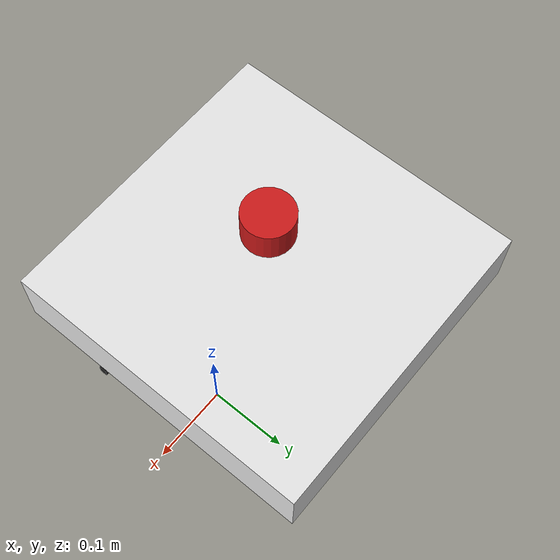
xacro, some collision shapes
<?xml version="1.0"?>
<robot name="front_diff_robot">

  <!-- MATERIALS                                               -->
  <material name="white"><color rgba="0.9 0.9 0.9 1.0"/></material>
  <material name="black"><color rgba="0.1 0.1 0.1 1.0"/></material>
  <material name="red"><color rgba="0.8 0.1 0.1 1.0"/></material>

  <!-- BASE FOOTPRINT & BASE LINK                              -->
  <link name="base_footprint"/>

  <joint name="base_footprint_joint" type="fixed">
    <parent link="base_footprint"/>
    <child link="base_link"/>
    <!-- Elevates base_link to the center of the 13cm hub wheels -->
    <origin xyz="0 0 0.065" rpy="0 0 0"/>
  </joint>

  <link name="base_link"/>

  <!-- CHASSIS (Visual: robot_base + custom casters from CAD)  -->
  <link name="chassis">
    <visual>
      <origin xyz="0 0 0" rpy="1.57 0 0"/>
      <geometry>
        <!-- Loads your merged 3D CAD model (Chassis + Casters) -->
        <mesh filename="file:///home/oscar/my_robot_ws/src/robot_description/meshes/base_robot.stl" scale="0.001 0.001 0.001"/>
      </geometry>
      <material name="white"/>
    </visual>
    <!-- Simple collision box for fast physics -->
    <collision>
      <origin xyz="0 0 0" rpy="0 0 0"/>
      <geometry>
        <box size="0.38 0.38 0.08"/>
      </geometry>
    </collision>
    <inertial>
      <mass value="5.0"/>
      <origin xyz="0 0 0" rpy="0 0 0"/>
      <inertia ixx="0.06283" ixy="0.0" ixz="0.0" iyy="0.06283" iyz="0.0" izz="0.12033"/>
    </inertial>
  </link>

  <joint name="chassis_joint" type="fixed">
    <parent link="base_link"/>
    <child link="chassis"/>
    <origin xyz="-0.09925 0 0.10675" rpy="0 0 0"/>
  </joint>

  <!-- DRIVE WHEELS (Visual: Real Hub Wheels)                   -->
  <!-- LEFT HUB WHEEL -->
  <link name="left_wheel">
    <visual>
      <origin xyz="0 0.0675 0" rpy="0 0 0"/>
      <geometry>
        <mesh filename="file:///home/oscar/my_robot_ws/src/robot_description/meshes/hub_wheel.stl" scale="0.001 0.001 0.001"/>
      </geometry>
      <material name="black"/>
    </visual>
    <collision>
      <origin xyz="0 0 0" rpy="1.570796 0 0"/>
      <geometry>
        <cylinder radius="0.065" length="0.038"/>
      </geometry>
    </collision>
    <inertial>
      <mass value="1.0"/>
      <origin xyz="0 0 0" rpy="0 0 0"/>
      <inertia ixx="0.00118" ixy="0.0" ixz="0.0" iyy="0.00118" iyz="0.0" izz="0.00211"/>
    </inertial>
  </link>

  <joint name="left_wheel_joint" type="continuous">
    <parent link="base_link"/>
    <child link="left_wheel"/>
    <origin xyz="0.035 -0.09 0.04" rpy="0 0 0"/>
    <axis xyz="1 0 0"/>
    <limit effort="10.0" velocity="10.0"/>
  </joint>

  <!-- RIGHT HUB WHEEL -->
  <link name="right_wheel">
    <visual>
      <origin xyz="0 0.0675 0" rpy="0 0 0"/>
      <geometry>
        <mesh filename="file:///home/oscar/my_robot_ws/src/robot_description/meshes/hub_wheel.stl" scale="0.001 0.001 0.001"/>
      </geometry>
      <material name="black"/>
    </visual>
    <collision>
      <origin xyz="0 0 0" rpy="1.570796 0 0"/>
      <geometry>
        <cylinder radius="0.065" length="0.038"/>
      </geometry>
    </collision>
    <inertial>
      <mass value="1.0"/>
      <origin xyz="0 0 0" rpy="0 0 0"/>
      <inertia ixx="0.00118" ixy="0.0" ixz="0.0" iyy="0.00118" iyz="0.0" izz="0.00211"/>
    </inertial>
  </link>

  <joint name="right_wheel_joint" type="continuous">
    <parent link="base_link"/>
    <child link="right_wheel"/>
    <origin xyz="-0.225 -0.09 0.04" rpy="0 0 0"/>
    <axis xyz="1 0 0"/>
    <limit effort="10.0" velocity="10.0"/>
  </joint>

  <!-- INVISIBLE ZERO-FRICTION SLIDING CONTACTS (Physics Only) -->
  <!-- LEFT CASTER -->
  <link name="left_caster">
    <collision>
      <origin xyz="0 0 0" rpy="0 0 0"/>
      <geometry>
        <sphere radius="0.025"/>
      </geometry>
    </collision>
    <inertial>
      <mass value="0.2"/>
      <origin xyz="0 0 0" rpy="0 0 0"/>
      <inertia ixx="0.00005" ixy="0.0" ixz="0.0" iyy="0.00005" iyz="0.0" izz="0.00006"/>
    </inertial>
  </link>

  <joint name="left_caster_joint" type="fixed">
    <parent link="base_link"/>
    <child link="left_caster"/>
    <origin xyz="-0.1985 0.14 -0.04" rpy="0 0 0"/>
  </joint>

  <gazebo reference="left_caster">
    <mu1>0.0</mu1>
    <mu2>0.0</mu2>
  </gazebo>

  <!-- RIGHT CASTER -->
  <link name="right_caster">
    <collision>
      <origin xyz="0 0 0" rpy="0 0 0"/>
      <geometry>
        <sphere radius="0.025"/>
      </geometry>
    </collision>
    <inertial>
      <mass value="0.2"/>
      <origin xyz="0 0 0" rpy="0 0 0"/>
      <inertia ixx="0.00005" ixy="0.0" ixz="0.0" iyy="0.00005" iyz="0.0" izz="0.00006"/>
    </inertial>
  </link>

  <joint name="right_caster_joint" type="fixed">
    <parent link="base_link"/>
    <child link="right_caster"/>
    <origin xyz="-0.1985 -0.14 -0.04" rpy="0 0 0"/>
  </joint>

  <gazebo reference="right_caster">
    <mu1>0.0</mu1>
    <mu2>0.0</mu2>
  </gazebo>

  <!-- SENSORS: LIDAR                                          -->
  <link name="lidar_link">
    <visual>
      <origin xyz="0 0 0" rpy="0 0 0"/>
      <geometry>
        <cylinder radius="0.03" length="0.04"/>
      </geometry>
      <material name="red"/>
    </visual>
    <collision>
      <origin xyz="0 0 0" rpy="0 0 0"/>
      <geometry>
        <cylinder radius="0.03" length="0.04"/>
      </geometry>
    </collision>
    <inertial>
      <mass value="0.12"/>
      <origin xyz="0 0 0" rpy="0 0 0"/>
      <inertia ixx="0.000043" ixy="0.0" ixz="0.0" iyy="0.000043" iyz="0.0" izz="0.000054"/>
    </inertial>
  </link>

  <joint name="lidar_joint" type="fixed">
    <parent link="chassis"/>
    <child link="lidar_link"/>
    <origin xyz="0 0 0.125" rpy="0 0 0"/>
  </joint>

  <!-- Gazebo LiDAR Plugin -->
  <gazebo reference="lidar_link">
    <material>Gazebo/Red</material>
    <sensor type="ray" name="lidar_sensor">
      <pose>0 0 0 0 0 0</pose>
      <visualize>false</visualize>
      <update_rate>10</update_rate>
      <ray>
        <scan>
          <horizontal>
            <samples>180</samples>
            <resolution>1</resolution>
            <min_angle>-3.14159</min_angle>
            <max_angle>3.14159</max_angle>
          </horizontal>
        </scan>
        <range>
          <min>0.15</min>
          <max>12.0</max>
          <resolution>0.01</resolution>
        </range>
      </ray>
      <plugin name="gazebo_ros_lidar" filename="libgazebo_ros_ray_sensor.so">
        <ros>
          <remapping>~/out:=scan</remapping>
        </ros>
        <output_type>sensor_msgs/LaserScan</output_type>
        <frame_name>laser</frame_name>
      </plugin>
    </sensor>
  </gazebo>

  <!-- SENSORS: IMU                                            -->
  <link name="imu_link">
    <visual>
      <geometry>
        <box size="0.02 0.02 0.01"/>
      </geometry>
      <material name="black"/>
    </visual>
    <inertial>
      <mass value="0.05"/>
      <origin xyz="0 0 0" rpy="0 0 0"/>
      <inertia ixx="0.000002" ixy="0.0" ixz="0.0" iyy="0.000002" iyz="0.0" izz="0.000003"/>
    </inertial>
  </link>

  <joint name="imu_joint" type="fixed">
    <parent link="chassis"/>
    <child link="imu_link"/>
    <origin xyz="0 0 0" rpy="0 0 0"/>
  </joint>

  <!-- GAZEBO DIFFERENTIAL DRIVE PLUGIN                        -->
  <gazebo>
    <plugin name="front_diff_drive" filename="libgazebo_ros_diff_drive.so">
      <left_joint>left_wheel_joint</left_joint>
      <right_joint>right_wheel_joint</right_joint>
      <wheel_separation>0.26</wheel_separation>
      <wheel_diameter>0.13</wheel_diameter>
      <max_wheel_torque>20</max_wheel_torque>
      <max_wheel_acceleration>2.0</max_wheel_acceleration>
      <publish_odom>true</publish_odom>
      <publish_odom_tf>true</publish_odom_tf>
      <publish_wheel_tf>true</publish_wheel_tf>
      <odometry_frame>odom</odometry_frame>
      <robot_base_frame>base_footprint</robot_base_frame>
    </plugin>
  </gazebo>

</robot>
